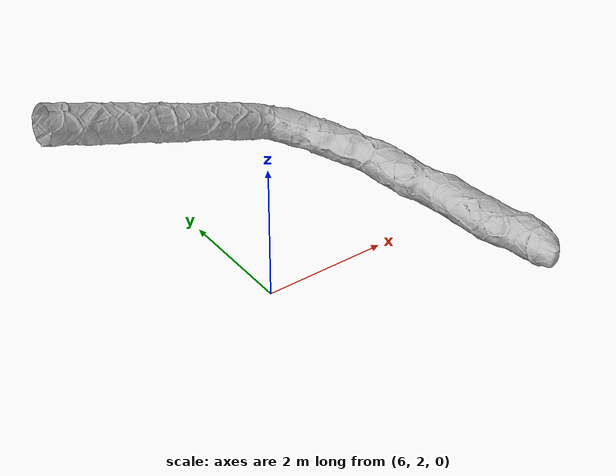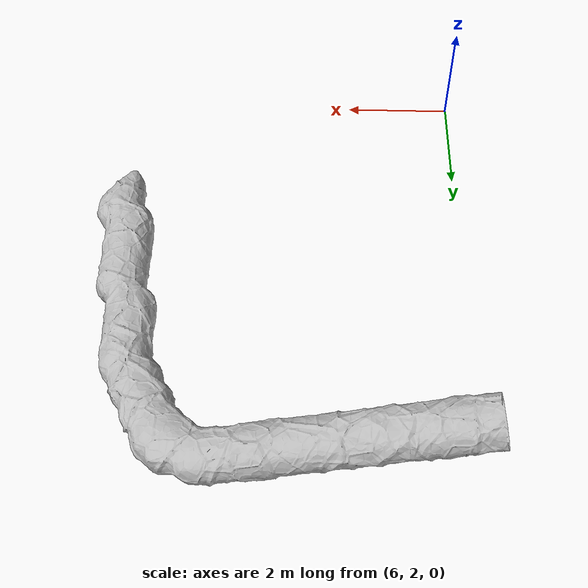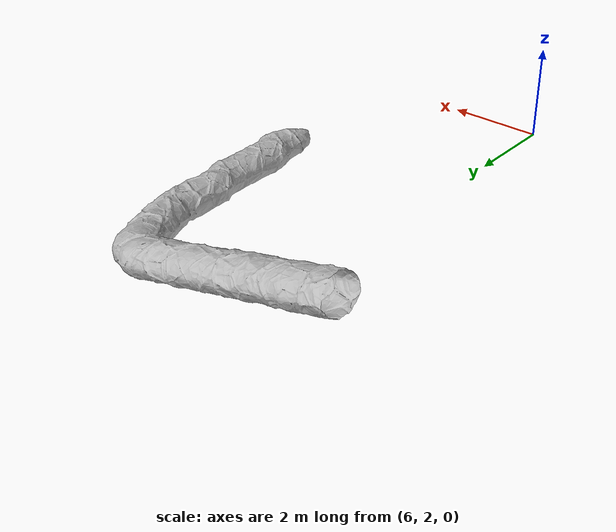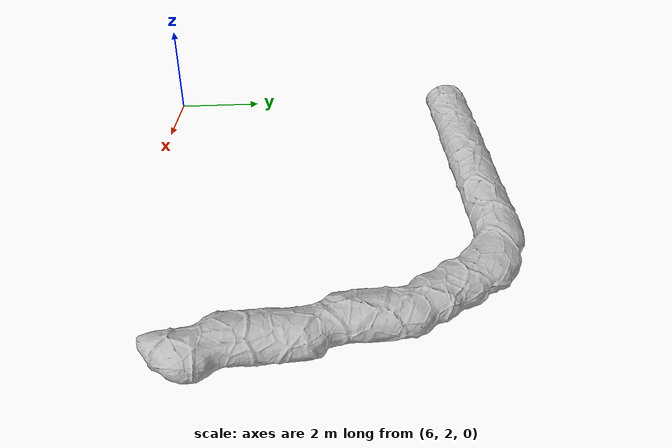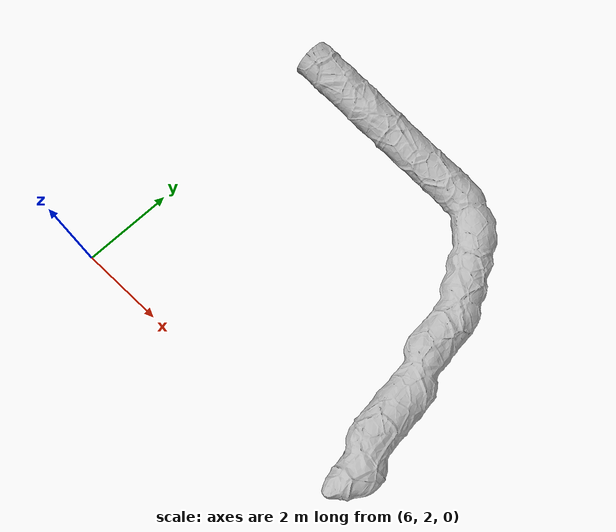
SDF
<?xml version="1.0" ?>
<sdf version="1.6">
  <world name="cave_world">

    <physics name="1ms" type="ignored">
      <max_step_size>0.001</max_step_size>
      <real_time_factor>1.0</real_time_factor>
    </physics>

    <plugin
      filename="gz-sim-physics-system"
      name="gz::sim::systems::Physics">
    </plugin>
    <plugin
      filename="gz-sim-user-commands-system"
      name="gz::sim::systems::UserCommands">
    </plugin>
    <plugin
      filename="gz-sim-scene-broadcaster-system"
      name="gz::sim::systems::SceneBroadcaster">
    </plugin>
    <plugin filename="gz-sim-sensors-system" name="gz::sim::systems::Sensors">
      <render_engine>ogre2</render_engine>
    </plugin>
    <plugin filename="gz-sim-contact-system" name="gz::sim::systems::Contact">
    </plugin>
    <plugin
      filename="gz-sim-forcetorque-system"
      name="gz::sim::systems::ForceTorque">
    </plugin>
    <plugin
      filename="gz-sim-imu-system"
      name="gz::sim::systems::Imu">
    </plugin>
    <light type="directional" name="sun">
      <cast_shadows>true</cast_shadows>
      <pose>0 0 10 0 0 0</pose>
      <diffuse>0.8 0.8 0.8 1</diffuse>
      <specular>0.2 0.2 0.2 1</specular>
      <attenuation>
        <range>1000</range>
        <constant>0.9</constant>
        <linear>0.01</linear>
        <quadratic>0.001</quadratic>
      </attenuation>
      <direction>-0.5 0.1 -0.9</direction>
    </light>

  <model name="my_cave_model">
    <static>true</static>
    <link name="link">
      <pose>-17 22 15 -1.56 0.27 0</pose>

      <collision name="collision">
        <geometry>
          <mesh>
            <uri>meshes/mesh.obj</uri>
            <scale>1 1 1</scale>
          </mesh>
        </geometry>
      </collision>
      <visual name="visual">
        <geometry>
          <mesh>
            <uri>meshes/mesh.obj</uri>
            <scale>1 1 1</scale>
          </mesh>
        </geometry>

      </visual>
    </link>
  </model>
  </world>
</sdf>
